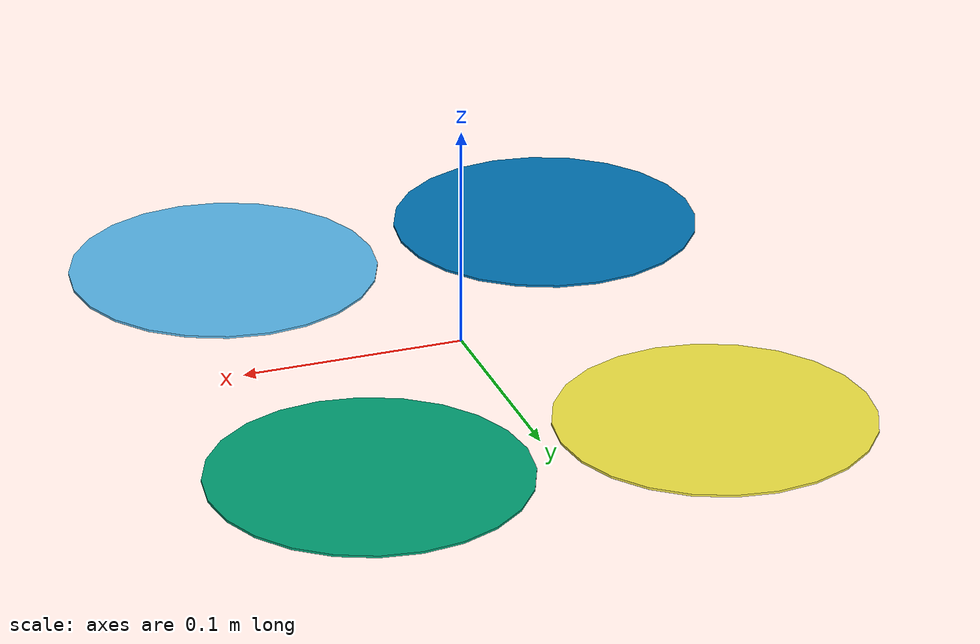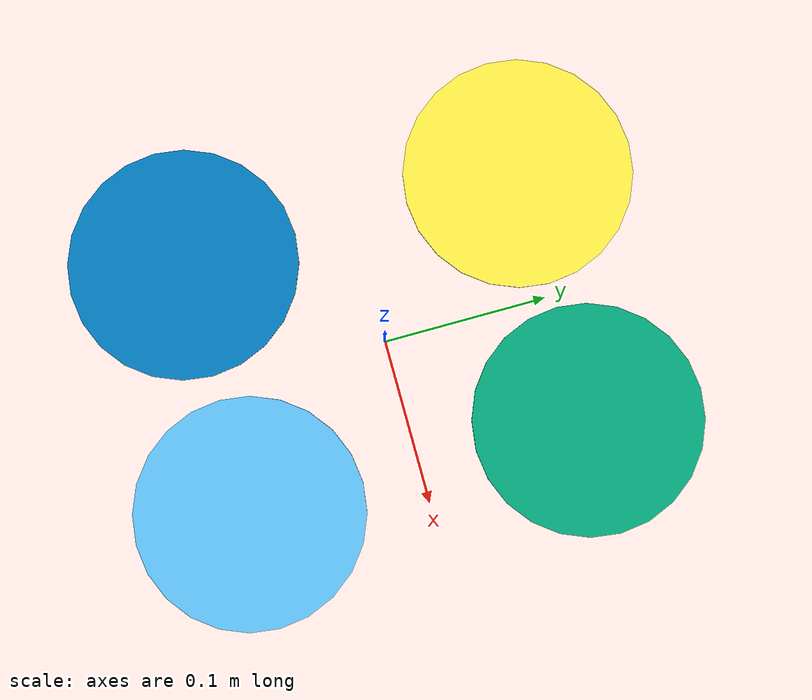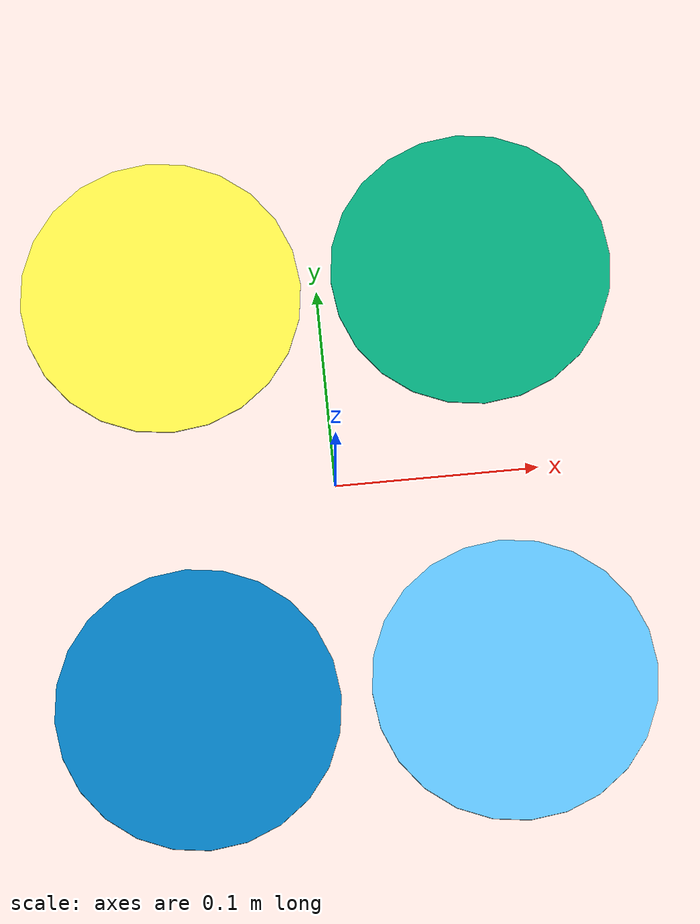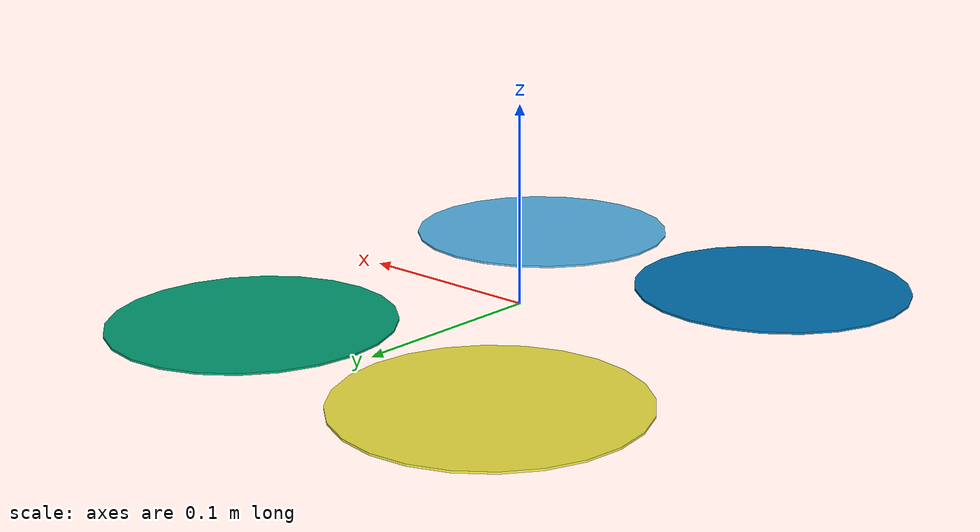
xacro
<?xml version="1.0"?>
<robot name="pifly" xmlns:xacro="http://ros.org/wiki/xacro">

  <xacro:include filename="rotor_link.xacro" />

  <link name="base_link" />

  <!--ZMR 250 frame-->
  <xacro:property name="W" value="0.210"/>
  <xacro:property name="H" value="0.155"/>

  <!--rotation direction: 1: CCW, 2: CW, 3: CCW, 4: CW-->
  <xacro:rotor_link id="1" base="base_link" origin="+${H/2} -${W/2} 0" radius="0.07" />
  <xacro:rotor_link id="2" base="base_link" origin="+${H/2} +${W/2} 0" radius="0.07" />
  <xacro:rotor_link id="3" base="base_link" origin="-${H/2} +${W/2} 0" radius="0.07" />
  <xacro:rotor_link id="4" base="base_link" origin="-${H/2} -${W/2} 0" radius="0.07" />

  <link name="base_imu" />

  <joint name="base_imu_joint" type="fixed">
    <parent link="base_link" />
    <child link="base_imu" />
    <origin rpy="0 0 ${pi}" />
  </joint>

  <xacro:include filename="$(find uav_description)/urdf/interfaces/imu_interface.xacro" />
  <xacro:include filename="$(find uav_description)/urdf/interfaces/magnetometer_interface.xacro" />
  <xacro:include filename="$(find uav_description)/urdf/interfaces/rotor_interface.xacro" />
  <xacro:include filename="$(find uav_description)/urdf/interfaces/rc_interface.xacro" />

  <xacro:macro name="rotors">
    <xacro:rotor id="1" />
    <xacro:rotor id="2" />
    <xacro:rotor id="3" />
    <xacro:rotor id="4" />
  </xacro:macro>

  <ros2_control name="imu" type="sensor">
    <properties>
      <async thread_priority="90"/>
    </properties>
    <hardware>
      <plugin>uav/drivers/MPU9250</plugin>
      <param name="sensor_name">base_imu</param>
      <param name="bus">1</param>
      <param name="calibration_file">$(find uav_description)/calibration/pifly.yaml</param>
    </hardware>
    <xacro:imu name="base_imu" />
    <xacro:magnetometer name="base_imu" />
  </ros2_control>

  <ros2_control name="pwm" type="actuator" is_async="true" rw_rate="400">
    <properties>
      <async thread_priority="90"/>
    </properties>
    <hardware>
      <plugin>uav/drivers/PCA9685</plugin>
      <param name="bus">1</param>
    </hardware>
    <xacro:rotors />
  </ros2_control>

  <!-- FrSky S.BUS frame is transmitted every 9 ms -->
  <ros2_control name="rc" type="sensor" is_async="true" rw_rate="100">
    <properties>
      <async thread_priority="90"/>
    </properties>
    <hardware>
      <plugin>uav/drivers/SBUS</plugin>
      <param name="device">/dev/ttyAMA0</param>
    </hardware>
    <xacro:rc />
  </ros2_control>
</robot>

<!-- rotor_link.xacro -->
<robot xmlns:xacro="http://ros.org/wiki/xacro">

  <xacro:macro name="rotor_link" params="id base origin radius mass=0.01">

    <xacro:property name="width" value="0.001" />

    <link name="rotor/${id}">
      <inertial>
        <mass value="${mass}"/>
        <inertia
          ixx="${(1/4*mass*radius*radius + 1/12*mass*width*width)}"
          iyy="${(1/4*mass*radius*radius + 1/12*mass*width*width)}"
          izz="${(1/2*mass*radius*radius)}"
          ixy="0" ixz="0" iyz="0"
        />
      </inertial>
      <visual>
        <geometry>
          <cylinder radius="${radius}" length="${width}" />
        </geometry>
      </visual>
    </link>

    <joint name="rotor/${id}" type="continuous">
      <parent link="${base}" />
      <child link="rotor/${id}" />
      <origin xyz="${origin}" />
      <axis xyz="0 0 1" />
    </joint>

  </xacro:macro>

</robot>
